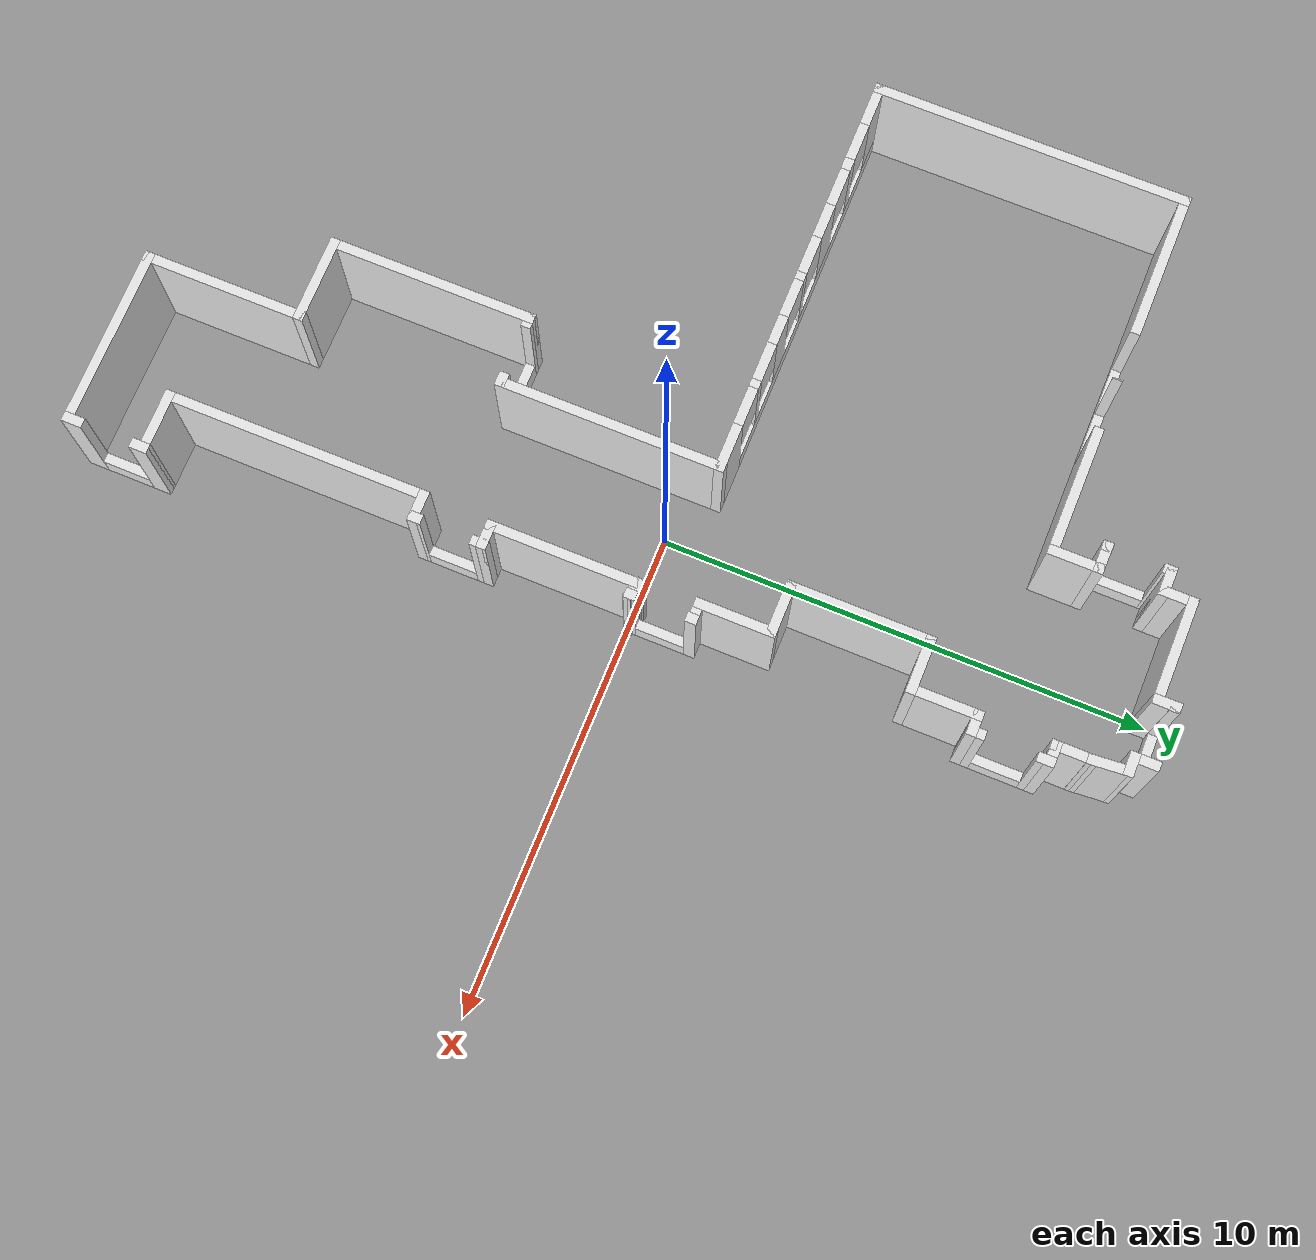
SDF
<?xml version='1.0'?>
<sdf version='1.4'>
  <model name='etseib_2pis2'>
    <link name='Wall_18'>
      <collision name='Wall_18_Collision'>
        <geometry>
          <box>
            <size>0.903575 0.2 2.5</size>
          </box>
        </geometry>
        <pose>0 0 1.25 0 -0 0</pose>
      </collision>
      <visual name='Wall_18_Visual'>
        <pose>0 0 1.25 0 -0 0</pose>
        <geometry>
          <box>
            <size>0.903575 0.2 2.5</size>
          </box>
        </geometry>
        <material>
          <script>
            <uri>file://media/materials/scripts/gazebo.material</uri>
            <name>Gazebo/White</name>
          </script>
        </material>
      </visual>
      <velocity_decay>
        <linear>0</linear>
        <angular>0</angular>
      </velocity_decay>
      <pose>1.57666 8.69449 0 0 0 -1.5708</pose>
    </link>
    <link name='Wall_19'>
      <collision name='Wall_19_Collision'>
        <geometry>
          <box>
            <size>0.516609 0.2 2.5</size>
          </box>
        </geometry>
        <pose>0 0 1.25 0 -0 0</pose>
      </collision>
      <visual name='Wall_19_Visual'>
        <pose>0 0 1.25 0 -0 0</pose>
        <geometry>
          <box>
            <size>0.516609 0.2 2.5</size>
          </box>
        </geometry>
        <material>
          <script>
            <uri>file://media/materials/scripts/gazebo.material</uri>
            <name>Gazebo/White</name>
          </script>
        </material>
      </visual>
      <velocity_decay>
        <linear>0</linear>
        <angular>0</angular>
      </velocity_decay>
      <pose>1.73497 8.34271 0 0 -0 0</pose>
    </link>
    <link name='Wall_20'>
      <pose>1.89327 7.58636 0 0 0 -1.5708</pose>
      <visual name='Wall_20_Visual_0'>
        <pose>-0.68138 0 1.25 0 -0 0</pose>
        <geometry>
          <box>
            <size>0.34993 0.2 2.5</size>
          </box>
        </geometry>
        <material>
          <script>
            <uri>file://media/materials/scripts/gazebo.material</uri>
            <name>Gazebo/White</name>
          </script>
        </material>
      </visual>
      <collision name='Wall_20_Collision_0'>
        <geometry>
          <box>
            <size>0.34993 0.2 2.5</size>
          </box>
        </geometry>
        <pose>-0.68138 0 1.25 0 -0 0</pose>
      </collision>
      <visual name='Wall_20_Visual_1'>
        <pose>0.674965 0 1.25 0 -0 0</pose>
        <geometry>
          <box>
            <size>0.36276 0.2 2.5</size>
          </box>
        </geometry>
        <material>
          <script>
            <uri>file://media/materials/scripts/gazebo.material</uri>
            <name>Gazebo/White</name>
          </script>
        </material>
      </visual>
      <collision name='Wall_20_Collision_1'>
        <geometry>
          <box>
            <size>0.36276 0.2 2.5</size>
          </box>
        </geometry>
        <pose>0.674965 0 1.25 0 -0 0</pose>
      </collision>
      <visual name='Wall_20_Visual_2'>
        <pose>-0.006415 0 0.25 0 -0 0</pose>
        <geometry>
          <box>
            <size>1 0.2 0.5</size>
          </box>
        </geometry>
        <material>
          <script>
            <uri>file://media/materials/scripts/gazebo.material</uri>
            <name>Gazebo/White</name>
          </script>
        </material>
      </visual>
      <collision name='Wall_20_Collision_2'>
        <geometry>
          <box>
            <size>1 0.2 0.5</size>
          </box>
        </geometry>
        <pose>-0.006415 0 0.25 0 -0 0</pose>
      </collision>
    </link>
    <link name='Wall_21'>
      <collision name='Wall_21_Collision'>
        <geometry>
          <box>
            <size>0.516609 0.2 2.5</size>
          </box>
        </geometry>
        <pose>0 0 1.25 0 -0 0</pose>
      </collision>
      <visual name='Wall_21_Visual'>
        <pose>0 0 1.25 0 -0 0</pose>
        <geometry>
          <box>
            <size>0.516609 0.2 2.5</size>
          </box>
        </geometry>
        <material>
          <script>
            <uri>file://media/materials/scripts/gazebo.material</uri>
            <name>Gazebo/White</name>
          </script>
        </material>
      </visual>
      <velocity_decay>
        <linear>0</linear>
        <angular>0</angular>
      </velocity_decay>
      <pose>1.73497 6.83002 0 0 -0 3.14159</pose>
    </link>
    <link name='Wall_22'>
      <collision name='Wall_22_Collision'>
        <geometry>
          <box>
            <size>1.50161 0.2 2.5</size>
          </box>
        </geometry>
        <pose>0 0 1.25 0 -0 0</pose>
      </collision>
      <visual name='Wall_22_Visual'>
        <pose>0 0 1.25 0 -0 0</pose>
        <geometry>
          <box>
            <size>1.50161 0.2 2.5</size>
          </box>
        </geometry>
        <material>
          <script>
            <uri>file://media/materials/scripts/gazebo.material</uri>
            <name>Gazebo/White</name>
          </script>
        </material>
      </visual>
      <velocity_decay>
        <linear>0</linear>
        <angular>0</angular>
      </velocity_decay>
      <pose>1.57666 6.17921 0 0 0 -1.5708</pose>
    </link>
    <link name='Wall_23'>
      <collision name='Wall_23_Collision'>
        <geometry>
          <box>
            <size>1.18501 0.2 2.5</size>
          </box>
        </geometry>
        <pose>0 0 1.25 0 -0 0</pose>
      </collision>
      <visual name='Wall_23_Visual'>
        <pose>0 0 1.25 0 -0 0</pose>
        <geometry>
          <box>
            <size>1.18501 0.2 2.5</size>
          </box>
        </geometry>
        <material>
          <script>
            <uri>file://media/materials/scripts/gazebo.material</uri>
            <name>Gazebo/White</name>
          </script>
        </material>
      </visual>
      <velocity_decay>
        <linear>0</linear>
        <angular>0</angular>
      </velocity_decay>
      <pose>1.08416 5.52841 0 0 -0 3.14159</pose>
    </link>
    <link name='Wall_24'>
      <collision name='Wall_24_Collision'>
        <geometry>
          <box>
            <size>2.97912 0.2 2.5</size>
          </box>
        </geometry>
        <pose>0 0 1.25 0 -0 0</pose>
      </collision>
      <visual name='Wall_24_Visual'>
        <pose>0 0 1.25 0 -0 0</pose>
        <geometry>
          <box>
            <size>2.97912 0.2 2.5</size>
          </box>
        </geometry>
        <material>
          <script>
            <uri>file://media/materials/scripts/gazebo.material</uri>
            <name>Gazebo/White</name>
          </script>
        </material>
      </visual>
      <velocity_decay>
        <linear>0</linear>
        <angular>0</angular>
      </velocity_decay>
      <pose>0.591659 4.13884 0 0 0 -1.5708</pose>
    </link>
    <link name='Wall_25'>
      <collision name='Wall_25_Collision'>
        <geometry>
          <box>
            <size>1.14983 0.2 2.5</size>
          </box>
        </geometry>
        <pose>0 0 1.25 0 -0 0</pose>
      </collision>
      <visual name='Wall_25_Visual'>
        <pose>0 0 1.25 0 -0 0</pose>
        <geometry>
          <box>
            <size>1.14983 0.2 2.5</size>
          </box>
        </geometry>
        <material>
          <script>
            <uri>file://media/materials/scripts/gazebo.material</uri>
            <name>Gazebo/White</name>
          </script>
        </material>
      </visual>
      <velocity_decay>
        <linear>0</linear>
        <angular>0</angular>
      </velocity_decay>
      <pose>1.06657 2.74928 0 0 -0 0</pose>
    </link>
    <link name='Wall_26'>
      <collision name='Wall_26_Collision'>
        <geometry>
          <box>
            <size>1.64233 0.2 2.5</size>
          </box>
        </geometry>
        <pose>0 0 1.25 0 -0 0</pose>
      </collision>
      <visual name='Wall_26_Visual'>
        <pose>0 0 1.25 0 -0 0</pose>
        <geometry>
          <box>
            <size>1.64233 0.2 2.5</size>
          </box>
        </geometry>
        <material>
          <script>
            <uri>file://media/materials/scripts/gazebo.material</uri>
            <name>Gazebo/White</name>
          </script>
        </material>
      </visual>
      <velocity_decay>
        <linear>0</linear>
        <angular>0</angular>
      </velocity_decay>
      <pose>1.54149 2.02812 0 0 0 -1.5708</pose>
    </link>
    <link name='Wall_27'>
      <collision name='Wall_27_Collision'>
        <geometry>
          <box>
            <size>0.516609 0.2 2.5</size>
          </box>
        </geometry>
        <pose>0 0 1.25 0 -0 0</pose>
      </collision>
      <visual name='Wall_27_Visual'>
        <pose>0 0 1.25 0 -0 0</pose>
        <geometry>
          <box>
            <size>0.516609 0.2 2.5</size>
          </box>
        </geometry>
        <material>
          <script>
            <uri>file://media/materials/scripts/gazebo.material</uri>
            <name>Gazebo/White</name>
          </script>
        </material>
      </visual>
      <velocity_decay>
        <linear>0</linear>
        <angular>0</angular>
      </velocity_decay>
      <pose>1.69979 1.30696 0 0 -0 0</pose>
    </link>
    <link name='Wall_28'>
      <pose>1.8581 0.673737 0 0 0 -1.5708</pose>
      <visual name='Wall_28_Visual_0'>
        <pose>-0.617177 0 1.25 0 -0 0</pose>
        <geometry>
          <box>
            <size>0.232077 0.2 2.5</size>
          </box>
        </geometry>
        <material>
          <script>
            <uri>file://media/materials/scripts/gazebo.material</uri>
            <name>Gazebo/White</name>
          </script>
        </material>
      </visual>
      <collision name='Wall_28_Collision_0'>
        <geometry>
          <box>
            <size>0.232077 0.2 2.5</size>
          </box>
        </geometry>
        <pose>-0.617177 0 1.25 0 -0 0</pose>
      </collision>
      <visual name='Wall_28_Visual_1'>
        <pose>0.616038 0 1.25 0 -0 0</pose>
        <geometry>
          <box>
            <size>0.234353 0.2 2.5</size>
          </box>
        </geometry>
        <material>
          <script>
            <uri>file://media/materials/scripts/gazebo.material</uri>
            <name>Gazebo/White</name>
          </script>
        </material>
      </visual>
      <collision name='Wall_28_Collision_1'>
        <geometry>
          <box>
            <size>0.234353 0.2 2.5</size>
          </box>
        </geometry>
        <pose>0.616038 0 1.25 0 -0 0</pose>
      </collision>
      <visual name='Wall_28_Visual_2'>
        <pose>-0.001138 0 0.25 0 -0 0</pose>
        <geometry>
          <box>
            <size>1 0.2 0.5</size>
          </box>
        </geometry>
        <material>
          <script>
            <uri>file://media/materials/scripts/gazebo.material</uri>
            <name>Gazebo/White</name>
          </script>
        </material>
      </visual>
      <collision name='Wall_28_Collision_2'>
        <geometry>
          <box>
            <size>1 0.2 0.5</size>
          </box>
        </geometry>
        <pose>-0.001138 0 0.25 0 -0 0</pose>
      </collision>
    </link>
    <link name='Wall_29'>
      <collision name='Wall_29_Collision'>
        <geometry>
          <box>
            <size>0.456105 0.2 2.5</size>
          </box>
        </geometry>
        <pose>0 0 1.25 0 -0 0</pose>
      </collision>
      <visual name='Wall_29_Visual'>
        <pose>0 0 1.25 0 -0 0</pose>
        <geometry>
          <box>
            <size>0.456105 0.2 2.5</size>
          </box>
        </geometry>
        <material>
          <script>
            <uri>file://media/materials/scripts/gazebo.material</uri>
            <name>Gazebo/White</name>
          </script>
        </material>
      </visual>
      <velocity_decay>
        <linear>0</linear>
        <angular>0</angular>
      </velocity_decay>
      <pose>1.73497 0.075698 0 0 -0 2.86329</pose>
    </link>
    <link name='Wall_30'>
      <collision name='Wall_30_Collision'>
        <geometry>
          <box>
            <size>3.1902 0.2 2.5</size>
          </box>
        </geometry>
        <pose>0 0 1.25 0 -0 0</pose>
      </collision>
      <visual name='Wall_30_Visual'>
        <pose>0 0 1.25 0 -0 0</pose>
        <geometry>
          <box>
            <size>3.1902 0.2 2.5</size>
          </box>
        </geometry>
        <material>
          <script>
            <uri>file://media/materials/scripts/gazebo.material</uri>
            <name>Gazebo/White</name>
          </script>
        </material>
      </visual>
      <velocity_decay>
        <linear>0</linear>
        <angular>0</angular>
      </velocity_decay>
      <pose>1.61184 -1.38422 0 0 0 -1.5708</pose>
    </link>
    <link name='Wall_31'>
      <collision name='Wall_31_Collision'>
        <geometry>
          <box>
            <size>0.586966 0.2 2.5</size>
          </box>
        </geometry>
        <pose>0 0 1.25 0 -0 0</pose>
      </collision>
      <visual name='Wall_31_Visual'>
        <pose>0 0 1.25 0 -0 0</pose>
        <geometry>
          <box>
            <size>0.586966 0.2 2.5</size>
          </box>
        </geometry>
        <material>
          <script>
            <uri>file://media/materials/scripts/gazebo.material</uri>
            <name>Gazebo/White</name>
          </script>
        </material>
      </visual>
      <velocity_decay>
        <linear>0</linear>
        <angular>0</angular>
      </velocity_decay>
      <pose>1.80533 -2.87932 0 0 -0 0</pose>
    </link>
    <link name='Wall_32'>
      <pose>1.99881 -3.58289 0 0 0 -1.5708</pose>
      <visual name='Wall_32_Visual_0'>
        <pose>-0.636526 0 1.25 0 -0 0</pose>
        <geometry>
          <box>
            <size>0.334098 0.2 2.5</size>
          </box>
        </geometry>
        <material>
          <script>
            <uri>file://media/materials/scripts/gazebo.material</uri>
            <name>Gazebo/White</name>
          </script>
        </material>
      </visual>
      <collision name='Wall_32_Collision_0'>
        <geometry>
          <box>
            <size>0.334098 0.2 2.5</size>
          </box>
        </geometry>
        <pose>-0.636526 0 1.25 0 -0 0</pose>
      </collision>
      <visual name='Wall_32_Visual_1'>
        <pose>0.667049 0 1.25 0 -0 0</pose>
        <geometry>
          <box>
            <size>0.273052 0.2 2.5</size>
          </box>
        </geometry>
        <material>
          <script>
            <uri>file://media/materials/scripts/gazebo.material</uri>
            <name>Gazebo/White</name>
          </script>
        </material>
      </visual>
      <collision name='Wall_32_Collision_1'>
        <geometry>
          <box>
            <size>0.273052 0.2 2.5</size>
          </box>
        </geometry>
        <pose>0.667049 0 1.25 0 -0 0</pose>
      </collision>
      <visual name='Wall_32_Visual_2'>
        <pose>0.030523 0 0.25 0 -0 0</pose>
        <geometry>
          <box>
            <size>1 0.2 0.5</size>
          </box>
        </geometry>
        <material>
          <script>
            <uri>file://media/materials/scripts/gazebo.material</uri>
            <name>Gazebo/White</name>
          </script>
        </material>
      </visual>
      <collision name='Wall_32_Collision_2'>
        <geometry>
          <box>
            <size>1 0.2 0.5</size>
          </box>
        </geometry>
        <pose>0.030523 0 0.25 0 -0 0</pose>
      </collision>
    </link>
    <link name='Wall_33'>
      <collision name='Wall_33_Collision'>
        <geometry>
          <box>
            <size>0.657324 0.2 2.5</size>
          </box>
        </geometry>
        <pose>0 0 1.25 0 -0 0</pose>
      </collision>
      <visual name='Wall_33_Visual'>
        <pose>0 0 1.25 0 -0 0</pose>
        <geometry>
          <box>
            <size>0.657324 0.2 2.5</size>
          </box>
        </geometry>
        <material>
          <script>
            <uri>file://media/materials/scripts/gazebo.material</uri>
            <name>Gazebo/White</name>
          </script>
        </material>
      </visual>
      <velocity_decay>
        <linear>0</linear>
        <angular>0</angular>
      </velocity_decay>
      <pose>1.77015 -4.28647 0 0 -0 3.14159</pose>
    </link>
    <link name='Wall_34'>
      <collision name='Wall_34_Collision'>
        <geometry>
          <box>
            <size>5.47681 0.2 2.5</size>
          </box>
        </geometry>
        <pose>0 0 1.25 0 -0 0</pose>
      </collision>
      <visual name='Wall_34_Visual'>
        <pose>0 0 1.25 0 -0 0</pose>
        <geometry>
          <box>
            <size>5.47681 0.2 2.5</size>
          </box>
        </geometry>
        <material>
          <script>
            <uri>file://media/materials/scripts/gazebo.material</uri>
            <name>Gazebo/White</name>
          </script>
        </material>
      </visual>
      <velocity_decay>
        <linear>0</linear>
        <angular>0</angular>
      </velocity_decay>
      <pose>1.54149 -6.92488 0 0 0 -1.5708</pose>
    </link>
    <link name='Wall_35'>
      <collision name='Wall_35_Collision'>
        <geometry>
          <box>
            <size>1.32572 0.2 2.5</size>
          </box>
        </geometry>
        <pose>0 0 1.25 0 -0 0</pose>
      </collision>
      <visual name='Wall_35_Visual'>
        <pose>0 0 1.25 0 -0 0</pose>
        <geometry>
          <box>
            <size>1.32572 0.2 2.5</size>
          </box>
        </geometry>
        <material>
          <script>
            <uri>file://media/materials/scripts/gazebo.material</uri>
            <name>Gazebo/White</name>
          </script>
        </material>
      </visual>
      <velocity_decay>
        <linear>0</linear>
        <angular>0</angular>
      </velocity_decay>
      <pose>2.10435 -9.56328 0 0 -0 0</pose>
    </link>
    <link name='Wall_36'>
      <pose>2.66721 -10.3548 0 0 0 -1.5708</pose>
      <visual name='Wall_36_Visual_0'>
        <pose>-0.708642 0 1.25 0 -0 0</pose>
        <geometry>
          <box>
            <size>0.365756 0.2 2.5</size>
          </box>
        </geometry>
        <material>
          <script>
            <uri>file://media/materials/scripts/gazebo.material</uri>
            <name>Gazebo/White</name>
          </script>
        </material>
      </visual>
      <collision name='Wall_36_Collision_0'>
        <geometry>
          <box>
            <size>0.365756 0.2 2.5</size>
          </box>
        </geometry>
        <pose>-0.708642 0 1.25 0 -0 0</pose>
      </collision>
      <visual name='Wall_36_Visual_1'>
        <pose>0.682878 0 1.25 0 -0 0</pose>
        <geometry>
          <box>
            <size>0.417284 0.2 2.5</size>
          </box>
        </geometry>
        <material>
          <script>
            <uri>file://media/materials/scripts/gazebo.material</uri>
            <name>Gazebo/White</name>
          </script>
        </material>
      </visual>
      <collision name='Wall_36_Collision_1'>
        <geometry>
          <box>
            <size>0.417284 0.2 2.5</size>
          </box>
        </geometry>
        <pose>0.682878 0 1.25 0 -0 0</pose>
      </collision>
      <visual name='Wall_36_Visual_2'>
        <pose>-0.025764 0 0.25 0 -0 0</pose>
        <geometry>
          <box>
            <size>1 0.2 0.5</size>
          </box>
        </geometry>
        <material>
          <script>
            <uri>file://media/materials/scripts/gazebo.material</uri>
            <name>Gazebo/White</name>
          </script>
        </material>
      </visual>
      <collision name='Wall_36_Collision_2'>
        <geometry>
          <box>
            <size>1 0.2 0.5</size>
          </box>
        </geometry>
        <pose>-0.025764 0 0.25 0 -0 0</pose>
      </collision>
    </link>
    <link name='Wall_37'>
      <collision name='Wall_37_Collision'>
        <geometry>
          <box>
            <size>3.75305 0.2 2.5</size>
          </box>
        </geometry>
        <pose>0 0 1.25 0 -0 0</pose>
      </collision>
      <visual name='Wall_37_Visual'>
        <pose>0 0 1.25 0 -0 0</pose>
        <geometry>
          <box>
            <size>3.75305 0.2 2.5</size>
          </box>
        </geometry>
        <material>
          <script>
            <uri>file://media/materials/scripts/gazebo.material</uri>
            <name>Gazebo/White</name>
          </script>
        </material>
      </visual>
      <velocity_decay>
        <linear>0</linear>
        <angular>0</angular>
      </velocity_decay>
      <pose>0.890679 -11.1463 0 0 -0 3.14159</pose>
    </link>
    <link name='Wall_38'>
      <collision name='Wall_38_Collision'>
        <geometry>
          <box>
            <size>3.40127 0.2 2.5</size>
          </box>
        </geometry>
        <pose>0 0 1.25 0 -0 0</pose>
      </collision>
      <visual name='Wall_38_Visual'>
        <pose>0 0 1.25 0 -0 0</pose>
        <geometry>
          <box>
            <size>3.40127 0.2 2.5</size>
          </box>
        </geometry>
        <material>
          <script>
            <uri>file://media/materials/scripts/gazebo.material</uri>
            <name>Gazebo/White</name>
          </script>
        </material>
      </visual>
      <velocity_decay>
        <linear>0</linear>
        <angular>0</angular>
      </velocity_decay>
      <pose>-0.885849 -9.54569 0 0 -0 1.5708</pose>
    </link>
    <link name='Wall_39'>
      <collision name='Wall_39_Collision'>
        <geometry>
          <box>
            <size>1.81822 0.2 2.5</size>
          </box>
        </geometry>
        <pose>0 0 1.25 0 -0 0</pose>
      </collision>
      <visual name='Wall_39_Visual'>
        <pose>0 0 1.25 0 -0 0</pose>
        <geometry>
          <box>
            <size>1.81822 0.2 2.5</size>
          </box>
        </geometry>
        <material>
          <script>
            <uri>file://media/materials/scripts/gazebo.material</uri>
            <name>Gazebo/White</name>
          </script>
        </material>
      </visual>
      <velocity_decay>
        <linear>0</linear>
        <angular>0</angular>
      </velocity_decay>
      <pose>-1.69496 -7.94506 0 0 -0 3.14159</pose>
    </link>
    <link name='Wall_40'>
      <collision name='Wall_40_Collision'>
        <geometry>
          <box>
            <size>4.31592 0.2 2.5</size>
          </box>
        </geometry>
        <pose>0 0 1.25 0 -0 0</pose>
      </collision>
      <visual name='Wall_40_Visual'>
        <pose>0 0 1.25 0 -0 0</pose>
        <geometry>
          <box>
            <size>4.31592 0.2 2.5</size>
          </box>
        </geometry>
        <material>
          <script>
            <uri>file://media/materials/scripts/gazebo.material</uri>
            <name>Gazebo/White</name>
          </script>
        </material>
      </visual>
      <velocity_decay>
        <linear>0</linear>
        <angular>0</angular>
      </velocity_decay>
      <pose>-2.50407 -5.8871 0 0 -0 1.5708</pose>
    </link>
    <link name='Wall_41'>
      <pose>-1.8005 -3.82914 0 0 -0 0</pose>
      <visual name='Wall_41_Visual_0'>
        <pose>-0.64898 0 1.25 0 -0 0</pose>
        <geometry>
          <box>
            <size>0.30919 0.2 2.5</size>
          </box>
        </geometry>
        <material>
          <script>
            <uri>file://media/materials/scripts/gazebo.material</uri>
            <name>Gazebo/White</name>
          </script>
        </material>
      </visual>
      <collision name='Wall_41_Collision_0'>
        <geometry>
          <box>
            <size>0.30919 0.2 2.5</size>
          </box>
        </geometry>
        <pose>-0.64898 0 1.25 0 -0 0</pose>
      </collision>
      <visual name='Wall_41_Visual_1'>
        <pose>0.654595 0 1.25 0 -0 0</pose>
        <geometry>
          <box>
            <size>0.29796 0.2 2.5</size>
          </box>
        </geometry>
        <material>
          <script>
            <uri>file://media/materials/scripts/gazebo.material</uri>
            <name>Gazebo/White</name>
          </script>
        </material>
      </visual>
      <collision name='Wall_41_Collision_1'>
        <geometry>
          <box>
            <size>0.29796 0.2 2.5</size>
          </box>
        </geometry>
        <pose>0.654595 0 1.25 0 -0 0</pose>
      </collision>
      <visual name='Wall_41_Visual_2'>
        <pose>0.005615 0 0.25 0 -0 0</pose>
        <geometry>
          <box>
            <size>1 0.2 0.5</size>
          </box>
        </geometry>
        <material>
          <script>
            <uri>file://media/materials/scripts/gazebo.material</uri>
            <name>Gazebo/White</name>
          </script>
        </material>
      </visual>
      <collision name='Wall_41_Collision_2'>
        <geometry>
          <box>
            <size>1 0.2 0.5</size>
          </box>
        </geometry>
        <pose>0.005615 0 0.25 0 -0 0</pose>
      </collision>
    </link>
    <link name='Wall_42'>
      <collision name='Wall_42_Collision'>
        <geometry>
          <box>
            <size>4.70288 0.2 2.5</size>
          </box>
        </geometry>
        <pose>0 0 1.25 0 -0 0</pose>
      </collision>
      <visual name='Wall_42_Visual'>
        <pose>0 0 1.25 0 -0 0</pose>
        <geometry>
          <box>
            <size>4.70288 0.2 2.5</size>
          </box>
        </geometry>
        <material>
          <script>
            <uri>file://media/materials/scripts/gazebo.material</uri>
            <name>Gazebo/White</name>
          </script>
        </material>
      </visual>
      <velocity_decay>
        <linear>0</linear>
        <angular>0</angular>
      </velocity_decay>
      <pose>-1.09692 -1.5777 0 0 -0 1.5708</pose>
    </link>
    <link name='Wall_43'>
      <pose>-5.33596 0.673737 0 0 -0 3.14159</pose>
      <visual name='Wall_43_Visual_0'>
        <pose>-3.83664 0 1.25 0 -0 0</pose>
        <geometry>
          <box>
            <size>1.00479 0.2 2.5</size>
          </box>
        </geometry>
        <material>
          <script>
            <uri>file://media/materials/scripts/gazebo.material</uri>
            <name>Gazebo/White</name>
          </script>
        </material>
      </visual>
      <collision name='Wall_43_Collision_0'>
        <geometry>
          <box>
            <size>1.00479 0.2 2.5</size>
          </box>
        </geometry>
        <pose>-3.83664 0 1.25 0 -0 0</pose>
      </collision>
      <visual name='Wall_43_Visual_1'>
        <pose>0.502397 0 0.25 0 -0 0</pose>
        <geometry>
          <box>
            <size>7.67329 0.2 0.5</size>
          </box>
        </geometry>
        <material>
          <script>
            <uri>file://media/materials/scripts/gazebo.material</uri>
            <name>Gazebo/White</name>
          </script>
        </material>
      </visual>
      <collision name='Wall_43_Collision_1'>
        <geometry>
          <box>
            <size>7.67329 0.2 0.5</size>
          </box>
        </geometry>
        <pose>0.502397 0 0.25 0 -0 0</pose>
      </collision>
      <visual name='Wall_43_Visual_2'>
        <pose>-2.44878 0 1.5 0 -0 0</pose>
        <geometry>
          <box>
            <size>0.170934 0.2 2</size>
          </box>
        </geometry>
        <material>
          <script>
            <uri>file://media/materials/scripts/gazebo.material</uri>
            <name>Gazebo/White</name>
          </script>
        </material>
      </visual>
      <collision name='Wall_43_Collision_2'>
        <geometry>
          <box>
            <size>0.170934 0.2 2</size>
          </box>
        </geometry>
        <pose>-2.44878 0 1.5 0 -0 0</pose>
      </collision>
      <visual name='Wall_43_Visual_3'>
        <pose>-1.25534 0 1.5 0 -0 0</pose>
        <geometry>
          <box>
            <size>0.615945 0.2 2</size>
          </box>
        </geometry>
        <material>
          <script>
            <uri>file://media/materials/scripts/gazebo.material</uri>
            <name>Gazebo/White</name>
          </script>
        </material>
      </visual>
      <collision name='Wall_43_Collision_3'>
        <geometry>
          <box>
            <size>0.615945 0.2 2</size>
          </box>
        </geometry>
        <pose>-1.25534 0 1.5 0 -0 0</pose>
      </collision>
      <visual name='Wall_43_Visual_4'>
        <pose>-0.061901 0 1.5 0 -0 0</pose>
        <geometry>
          <box>
            <size>0.170934 0.2 2</size>
          </box>
        </geometry>
        <material>
          <script>
            <uri>file://media/materials/scripts/gazebo.material</uri>
            <name>Gazebo/White</name>
          </script>
        </material>
      </visual>
      <collision name='Wall_43_Collision_4'>
        <geometry>
          <box>
            <size>0.170934 0.2 2</size>
          </box>
        </geometry>
        <pose>-0.061901 0 1.5 0 -0 0</pose>
      </collision>
      <visual name='Wall_43_Visual_5'>
        <pose>1.19222 0 1.5 0 -0 0</pose>
        <geometry>
          <box>
            <size>0.737312 0.2 2</size>
          </box>
        </geometry>
        <material>
          <script>
            <uri>file://media/materials/scripts/gazebo.material</uri>
            <name>Gazebo/White</name>
          </script>
        </material>
      </visual>
      <collision name='Wall_43_Collision_5'>
        <geometry>
          <box>
            <size>0.737312 0.2 2</size>
          </box>
        </geometry>
        <pose>1.19222 0 1.5 0 -0 0</pose>
      </collision>
      <visual name='Wall_43_Visual_6'>
        <pose>2.4868 0 1.5 0 -0 0</pose>
        <geometry>
          <box>
            <size>0.251845 0.2 2</size>
          </box>
        </geometry>
        <material>
          <script>
            <uri>file://media/materials/scripts/gazebo.material</uri>
            <name>Gazebo/White</name>
          </script>
        </material>
      </visual>
      <collision name='Wall_43_Collision_6'>
        <geometry>
          <box>
            <size>0.251845 0.2 2</size>
          </box>
        </geometry>
        <pose>2.4868 0 1.5 0 -0 0</pose>
      </collision>
      <visual name='Wall_43_Visual_7'>
        <pose>3.87588 0 1.5 0 -0 0</pose>
        <geometry>
          <box>
            <size>0.926317 0.2 2</size>
          </box>
        </geometry>
        <material>
          <script>
            <uri>file://media/materials/scripts/gazebo.material</uri>
            <name>Gazebo/White</name>
          </script>
        </material>
      </visual>
      <collision name='Wall_43_Collision_7'>
        <geometry>
          <box>
            <size>0.926317 0.2 2</size>
          </box>
        </geometry>
        <pose>3.87588 0 1.5 0 -0 0</pose>
      </collision>
      <visual name='Wall_43_Visual_8'>
        <pose>-2.93425 0 1.9 0 -0 0</pose>
        <geometry>
          <box>
            <size>0.8 0.2 1.2</size>
          </box>
        </geometry>
        <material>
          <script>
            <uri>file://media/materials/scripts/gazebo.material</uri>
            <name>Gazebo/White</name>
          </script>
        </material>
      </visual>
      <collision name='Wall_43_Collision_8'>
        <geometry>
          <box>
            <size>0.8 0.2 1.2</size>
          </box>
        </geometry>
        <pose>-2.93425 0 1.9 0 -0 0</pose>
      </collision>
      <visual name='Wall_43_Visual_9'>
        <pose>-1.96331 0 1.9 0 -0 0</pose>
        <geometry>
          <box>
            <size>0.8 0.2 1.2</size>
          </box>
        </geometry>
        <material>
          <script>
            <uri>file://media/materials/scripts/gazebo.material</uri>
            <name>Gazebo/White</name>
          </script>
        </material>
      </visual>
      <collision name='Wall_43_Collision_9'>
        <geometry>
          <box>
            <size>0.8 0.2 1.2</size>
          </box>
        </geometry>
        <pose>-1.96331 0 1.9 0 -0 0</pose>
      </collision>
      <visual name='Wall_43_Visual_10'>
        <pose>-0.547368 0 1.9 0 -0 0</pose>
        <geometry>
          <box>
            <size>0.8 0.2 1.2</size>
          </box>
        </geometry>
        <material>
          <script>
            <uri>file://media/materials/scripts/gazebo.material</uri>
            <name>Gazebo/White</name>
          </script>
        </material>
      </visual>
      <collision name='Wall_43_Collision_10'>
        <geometry>
          <box>
            <size>0.8 0.2 1.2</size>
          </box>
        </geometry>
        <pose>-0.547368 0 1.9 0 -0 0</pose>
      </collision>
      <visual name='Wall_43_Visual_11'>
        <pose>0.423566 0 1.9 0 -0 0</pose>
        <geometry>
          <box>
            <size>0.8 0.2 1.2</size>
          </box>
        </geometry>
        <material>
          <script>
            <uri>file://media/materials/scripts/gazebo.material</uri>
            <name>Gazebo/White</name>
          </script>
        </material>
      </visual>
      <collision name='Wall_43_Collision_11'>
        <geometry>
          <box>
            <size>0.8 0.2 1.2</size>
          </box>
        </geometry>
        <pose>0.423566 0 1.9 0 -0 0</pose>
      </collision>
      <visual name='Wall_43_Visual_12'>
        <pose>1.96088 0 1.9 0 -0 0</pose>
        <geometry>
          <box>
            <size>0.8 0.2 1.2</size>
          </box>
        </geometry>
        <material>
          <script>
            <uri>file://media/materials/scripts/gazebo.material</uri>
            <name>Gazebo/White</name>
          </script>
        </material>
      </visual>
      <collision name='Wall_43_Collision_12'>
        <geometry>
          <box>
            <size>0.8 0.2 1.2</size>
          </box>
        </geometry>
        <pose>1.96088 0 1.9 0 -0 0</pose>
      </collision>
      <visual name='Wall_43_Visual_13'>
        <pose>3.01272 0 1.9 0 -0 0</pose>
        <geometry>
          <box>
            <size>0.8 0.2 1.2</size>
          </box>
        </geometry>
        <material>
          <script>
            <uri>file://media/materials/scripts/gazebo.material</uri>
            <name>Gazebo/White</name>
          </script>
        </material>
      </visual>
      <collision name='Wall_43_Collision_13'>
        <geometry>
          <box>
            <size>0.8 0.2 1.2</size>
          </box>
        </geometry>
        <pose>3.01272 0 1.9 0 -0 0</pose>
      </collision>
    </link>
    <link name='Wall_44'>
      <collision name='Wall_44_Collision'>
        <geometry>
          <box>
            <size>6.56736 0.2 2.5</size>
          </box>
        </geometry>
        <pose>0 0 1.25 0 -0 0</pose>
      </collision>
      <visual name='Wall_44_Visual'>
        <pose>0 0 1.25 0 -0 0</pose>
        <geometry>
          <box>
            <size>6.56736 0.2 2.5</size>
          </box>
        </geometry>
        <material>
          <script>
            <uri>file://media/materials/scripts/gazebo.material</uri>
            <name>Gazebo/White</name>
          </script>
        </material>
      </visual>
      <velocity_decay>
        <linear>0</linear>
        <angular>0</angular>
      </velocity_decay>
      <pose>-9.575 3.85742 0 0 -0 1.5708</pose>
    </link>
    <link name='Wall_45'>
      <pose>-5.74052 7.04109 0 0 -0 0</pose>
      <visual name='Wall_45_Visual_0'>
        <pose>-2.38857 0 1.25 0 -0 0</pose>
        <geometry>
          <box>
            <size>3.09183 0.2 2.5</size>
          </box>
        </geometry>
        <material>
          <script>
            <uri>file://media/materials/scripts/gazebo.material</uri>
            <name>Gazebo/White</name>
          </script>
        </material>
      </visual>
      <collision name='Wall_45_Collision_0'>
        <geometry>
          <box>
            <size>3.09183 0.2 2.5</size>
          </box>
        </geometry>
        <pose>-2.38857 0 1.25 0 -0 0</pose>
      </collision>
      <visual name='Wall_45_Visual_1'>
        <pose>0.166347 0 1.25 0 -0 0</pose>
        <geometry>
          <box>
            <size>0.018004 0.2 2.5</size>
          </box>
        </geometry>
        <material>
          <script>
            <uri>file://media/materials/scripts/gazebo.material</uri>
            <name>Gazebo/White</name>
          </script>
        </material>
      </visual>
      <collision name='Wall_45_Collision_1'>
        <geometry>
          <box>
            <size>0.018004 0.2 2.5</size>
          </box>
        </geometry>
        <pose>0.166347 0 1.25 0 -0 0</pose>
      </collision>
      <visual name='Wall_45_Visual_2'>
        <pose>2.57475 0 1.25 0 -0 0</pose>
        <geometry>
          <box>
            <size>2.71947 0.2 2.5</size>
          </box>
        </geometry>
        <material>
          <script>
            <uri>file://media/materials/scripts/gazebo.material</uri>
            <name>Gazebo/White</name>
          </script>
        </material>
      </visual>
      <collision name='Wall_45_Collision_2'>
        <geometry>
          <box>
            <size>2.71947 0.2 2.5</size>
          </box>
        </geometry>
        <pose>2.57475 0 1.25 0 -0 0</pose>
      </collision>
      <visual name='Wall_45_Visual_3'>
        <pose>-0.342655 0 0.25 0 -0 0</pose>
        <geometry>
          <box>
            <size>1 0.2 0.5</size>
          </box>
        </geometry>
        <material>
          <script>
            <uri>file://media/materials/scripts/gazebo.material</uri>
            <name>Gazebo/White</name>
          </script>
        </material>
      </visual>
      <collision name='Wall_45_Collision_3'>
        <geometry>
          <box>
            <size>1 0.2 0.5</size>
          </box>
        </geometry>
        <pose>-0.342655 0 0.25 0 -0 0</pose>
      </collision>
      <visual name='Wall_45_Visual_4'>
        <pose>0.695184 0 0.25 0 -0 0</pose>
        <geometry>
          <box>
            <size>1.03967 0.2 0.5</size>
          </box>
        </geometry>
        <material>
          <script>
            <uri>file://media/materials/scripts/gazebo.material</uri>
            <name>Gazebo/White</name>
          </script>
        </material>
      </visual>
      <collision name='Wall_45_Collision_4'>
        <geometry>
          <box>
            <size>1.03967 0.2 0.5</size>
          </box>
        </geometry>
        <pose>0.695184 0 0.25 0 -0 0</pose>
      </collision>
    </link>
    <link name='Wall_46'>
      <collision name='Wall_46_Collision'>
        <geometry>
          <box>
            <size>1.11465 0.2 2.5</size>
          </box>
        </geometry>
        <pose>0 0 1.25 0 -0 0</pose>
      </collision>
      <visual name='Wall_46_Visual'>
        <pose>0 0 1.25 0 -0 0</pose>
        <geometry>
          <box>
            <size>1.11465 0.2 2.5</size>
          </box>
        </geometry>
        <material>
          <script>
            <uri>file://media/materials/scripts/gazebo.material</uri>
            <name>Gazebo/White</name>
          </script>
        </material>
      </visual>
      <velocity_decay>
        <linear>0</linear>
        <angular>0</angular>
      </velocity_decay>
      <pose>-1.90603 7.49842 0 0 -0 1.5708</pose>
    </link>
    <link name='Wall_47'>
      <collision name='Wall_47_Collision'>
        <geometry>
          <box>
            <size>0.657324 0.2 2.5</size>
          </box>
        </geometry>
        <pose>0 0 1.25 0 -0 0</pose>
      </collision>
      <visual name='Wall_47_Visual'>
        <pose>0 0 1.25 0 -0 0</pose>
        <geometry>
          <box>
            <size>0.657324 0.2 2.5</size>
          </box>
        </geometry>
        <material>
          <script>
            <uri>file://media/materials/scripts/gazebo.material</uri>
            <name>Gazebo/White</name>
          </script>
        </material>
      </visual>
      <velocity_decay>
        <linear>0</linear>
        <angular>0</angular>
      </velocity_decay>
      <pose>-2.13469 7.95574 0 0 -0 3.14159</pose>
    </link>
    <link name='Wall_48'>
      <pose>-2.36336 8.58896 0 0 -0 1.5708</pose>
      <visual name='Wall_48_Visual_0'>
        <pose>-0.62923 0 1.25 0 -0 0</pose>
        <geometry>
          <box>
            <size>0.207969 0.2 2.5</size>
          </box>
        </geometry>
        <material>
          <script>
            <uri>file://media/materials/scripts/gazebo.material</uri>
            <name>Gazebo/White</name>
          </script>
        </material>
      </visual>
      <collision name='Wall_48_Collision_0'>
        <geometry>
          <box>
            <size>0.207969 0.2 2.5</size>
          </box>
        </geometry>
        <pose>-0.62923 0 1.25 0 -0 0</pose>
      </collision>
      <visual name='Wall_48_Visual_1'>
        <pose>0.603985 0 1.25 0 -0 0</pose>
        <geometry>
          <box>
            <size>0.258461 0.2 2.5</size>
          </box>
        </geometry>
        <material>
          <script>
            <uri>file://media/materials/scripts/gazebo.material</uri>
            <name>Gazebo/White</name>
          </script>
        </material>
      </visual>
      <collision name='Wall_48_Collision_1'>
        <geometry>
          <box>
            <size>0.258461 0.2 2.5</size>
          </box>
        </geometry>
        <pose>0.603985 0 1.25 0 -0 0</pose>
      </collision>
      <visual name='Wall_48_Visual_2'>
        <pose>-0.025246 0 0.25 0 -0 0</pose>
        <geometry>
          <box>
            <size>1 0.2 0.5</size>
          </box>
        </geometry>
        <material>
          <script>
            <uri>file://media/materials/scripts/gazebo.material</uri>
            <name>Gazebo/White</name>
          </script>
        </material>
      </visual>
      <collision name='Wall_48_Collision_2'>
        <geometry>
          <box>
            <size>1 0.2 0.5</size>
          </box>
        </geometry>
        <pose>-0.025246 0 0.25 0 -0 0</pose>
      </collision>
    </link>
    <link name='Wall_49'>
      <collision name='Wall_49_Collision'>
        <geometry>
          <box>
            <size>0.622145 0.2 2.5</size>
          </box>
        </geometry>
        <pose>0 0 1.25 0 -0 0</pose>
      </collision>
      <visual name='Wall_49_Visual'>
        <pose>0 0 1.25 0 -0 0</pose>
        <geometry>
          <box>
            <size>0.622145 0.2 2.5</size>
          </box>
        </geometry>
        <material>
          <script>
            <uri>file://media/materials/scripts/gazebo.material</uri>
            <name>Gazebo/White</name>
          </script>
        </material>
      </visual>
      <velocity_decay>
        <linear>0</linear>
        <angular>0</angular>
      </velocity_decay>
      <pose>-2.15228 9.22218 0 0 -0 0</pose>
    </link>
    <link name='Wall_50'>
      <collision name='Wall_50_Collision'>
        <geometry>
          <box>
            <size>0.76286 0.2 2.5</size>
          </box>
        </geometry>
        <pose>0 0 1.25 0 -0 0</pose>
      </collision>
      <visual name='Wall_50_Visual'>
        <pose>0 0 1.25 0 -0 0</pose>
        <geometry>
          <box>
            <size>0.76286 0.2 2.5</size>
          </box>
        </geometry>
        <material>
          <script>
            <uri>file://media/materials/scripts/gazebo.material</uri>
            <name>Gazebo/White</name>
          </script>
        </material>
      </visual>
      <velocity_decay>
        <linear>0</linear>
        <angular>0</angular>
      </velocity_decay>
      <pose>-1.94121 9.50361 0 0 -0 1.5708</pose>
    </link>
    <link name='Wall_51'>
      <collision name='Wall_51_Collision'>
        <geometry>
          <box>
            <size>2.20519 0.2 2.5</size>
          </box>
        </geometry>
        <pose>0 0 1.25 0 -0 0</pose>
      </collision>
      <visual name='Wall_51_Visual'>
        <pose>0 0 1.25 0 -0 0</pose>
        <geometry>
          <box>
            <size>2.20519 0.2 2.5</size>
          </box>
        </geometry>
        <material>
          <script>
            <uri>file://media/materials/scripts/gazebo.material</uri>
            <name>Gazebo/White</name>
          </script>
        </material>
      </visual>
      <velocity_decay>
        <linear>0</linear>
        <angular>0</angular>
      </velocity_decay>
      <pose>-0.938617 9.78504 0 0 -0 0</pose>
    </link>
    <link name='Wall_52'>
      <collision name='Wall_52_Collision'>
        <geometry>
          <box>
            <size>0.556444 0.2 2.5</size>
          </box>
        </geometry>
        <pose>0 0 1.25 0 -0 0</pose>
      </collision>
      <visual name='Wall_52_Visual'>
        <pose>0 0 1.25 0 -0 0</pose>
        <geometry>
          <box>
            <size>0.556444 0.2 2.5</size>
          </box>
        </geometry>
        <material>
          <script>
            <uri>file://media/materials/scripts/gazebo.material</uri>
            <name>Gazebo/White</name>
          </script>
        </material>
      </visual>
      <velocity_decay>
        <linear>0</linear>
        <angular>0</angular>
      </velocity_decay>
      <pose>0.063978 9.96326 0 0 -0 1.5708</pose>
    </link>
    <link name='Wall_53'>
      <pose>0.651632 10.1415 0 0 -0 0</pose>
      <visual name='Wall_53_Visual_0'>
        <pose>-0.583189 0 1.25 0 -0 0</pose>
        <geometry>
          <box>
            <size>0.208931 0.2 2.5</size>
          </box>
        </geometry>
        <material>
          <script>
            <uri>file://media/materials/scripts/gazebo.material</uri>
            <name>Gazebo/White</name>
          </script>
        </material>
      </visual>
      <collision name='Wall_53_Collision_0'>
        <geometry>
          <box>
            <size>0.208931 0.2 2.5</size>
          </box>
        </geometry>
        <pose>-0.583189 0 1.25 0 -0 0</pose>
      </collision>
      <visual name='Wall_53_Visual_1'>
        <pose>0.604466 0 1.25 0 -0 0</pose>
        <geometry>
          <box>
            <size>0.166379 0.2 2.5</size>
          </box>
        </geometry>
        <material>
          <script>
            <uri>file://media/materials/scripts/gazebo.material</uri>
            <name>Gazebo/White</name>
          </script>
        </material>
      </visual>
      <collision name='Wall_53_Collision_1'>
        <geometry>
          <box>
            <size>0.166379 0.2 2.5</size>
          </box>
        </geometry>
        <pose>0.604466 0 1.25 0 -0 0</pose>
      </collision>
      <visual name='Wall_53_Visual_2'>
        <pose>0.021276 0 0.25 0 -0 0</pose>
        <geometry>
          <box>
            <size>1 0.2 0.5</size>
          </box>
        </geometry>
        <material>
          <script>
            <uri>file://media/materials/scripts/gazebo.material</uri>
            <name>Gazebo/White</name>
          </script>
        </material>
      </visual>
      <collision name='Wall_53_Collision_2'>
        <geometry>
          <box>
            <size>1 0.2 0.5</size>
          </box>
        </geometry>
        <pose>0.021276 0 0.25 0 -0 0</pose>
      </collision>
    </link>
    <link name='Wall_54'>
      <collision name='Wall_54_Collision'>
        <geometry>
          <box>
            <size>0.604556 0.2 2.5</size>
          </box>
        </geometry>
        <pose>0 0 1.25 0 -0 0</pose>
      </collision>
      <visual name='Wall_54_Visual'>
        <pose>0 0 1.25 0 -0 0</pose>
        <geometry>
          <box>
            <size>0.604556 0.2 2.5</size>
          </box>
        </geometry>
        <material>
          <script>
            <uri>file://media/materials/scripts/gazebo.material</uri>
            <name>Gazebo/White</name>
          </script>
        </material>
      </visual>
      <velocity_decay>
        <linear>0</linear>
        <angular>0</angular>
      </velocity_decay>
      <pose>1.23929 9.9392 0 0 0 -1.5708</pose>
    </link>
    <link name='Wall_55'>
      <collision name='Wall_55_Collision'>
        <geometry>
          <box>
            <size>0.483189 0.2 2.5</size>
          </box>
        </geometry>
        <pose>0 0 1.25 0 -0 0</pose>
      </collision>
      <visual name='Wall_55_Visual'>
        <pose>0 0 1.25 0 -0 0</pose>
        <geometry>
          <box>
            <size>0.483189 0.2 2.5</size>
          </box>
        </geometry>
        <material>
          <script>
            <uri>file://media/materials/scripts/gazebo.material</uri>
            <name>Gazebo/White</name>
          </script>
        </material>
      </visual>
      <velocity_decay>
        <linear>0</linear>
        <angular>0</angular>
      </velocity_decay>
      <pose>1.38088 9.73692 0 0 -0 0</pose>
    </link>
    <link name='Wall_56'>
      <collision name='Wall_56_Collision'>
        <geometry>
          <box>
            <size>0.892764 0.2 2.5</size>
          </box>
        </geometry>
        <pose>0 0 1.25 0 -0 0</pose>
      </collision>
      <visual name='Wall_56_Visual'>
        <pose>0 0 1.25 0 -0 0</pose>
        <geometry>
          <box>
            <size>0.892764 0.2 2.5</size>
          </box>
        </geometry>
        <material>
          <script>
            <uri>file://media/materials/scripts/gazebo.material</uri>
            <name>Gazebo/White</name>
          </script>
        </material>
      </visual>
      <velocity_decay>
        <linear>0</linear>
        <angular>0</angular>
      </velocity_decay>
      <pose>1.54957 9.3916 0 0 0 -1.49249</pose>
    </link>
    <static>1</static>
  </model>
</sdf>
